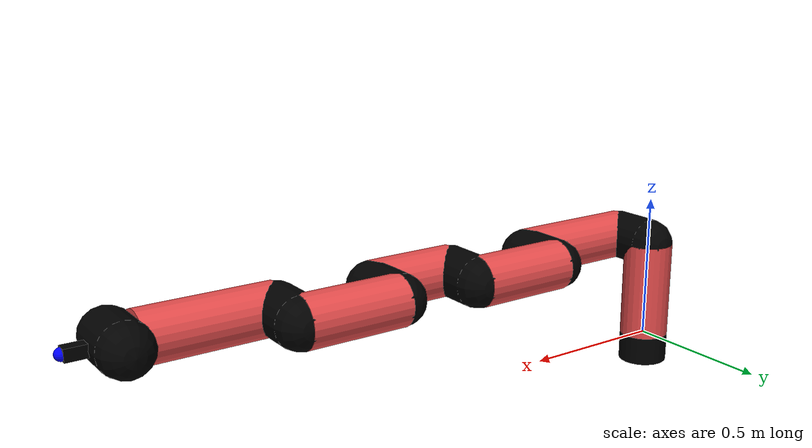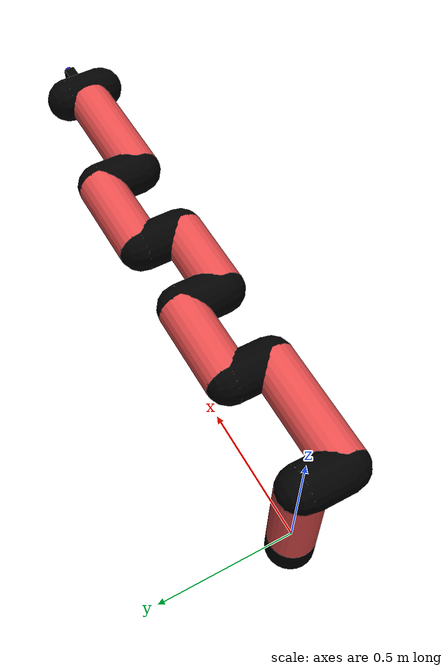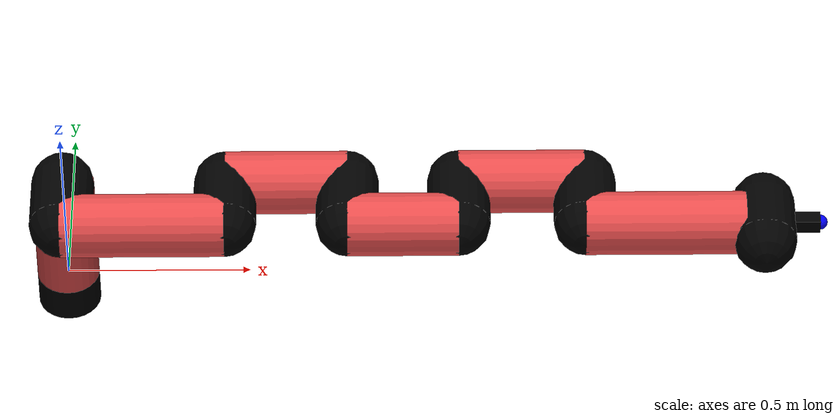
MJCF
<mujoco model="manipulator">
		<compiler angle="degree" coordinate="local" inertiafromgeom="auto" meshdir="meshes/"/>
		<option gravity="0 0 0" integrator="RK4" iterations="30" timestep="0.01"/>

		<default>
		<joint armature="1" limited="true" stiffness="10" damping="15" frictionloss="5.0"/>
		<geom conaffinity="1" condim="3" contype="1" friction=".5 .1 .1" margin="0.002"/>
		<motor ctrllimited="true"/>
		<position ctrllimited="true"/>
		</default>

		<asset>
		<texture builtin="gradient" height="100" rgb1="1.0 1.0 1.0" rgb2="1.0 1.0 1.0" type="skybox" width="100"/>
		<texture builtin="flat" height="32" name="arm_tex" rgb1="0.9 0.3 0.3" type="2d" width="32"/>
		<texture builtin="flat" height="32" name="gripper_tex" rgb1="0.0 0.0 0.0" type="cube" width="32"/>

		<material name="arm_mat" shininess="0.1" specular="0.1" texture="arm_tex"/>
		<material name="gripper_mat" shininess="1" specular="1" texture="gripper_tex"/>
		</asset>

		<worldbody>
		<light cutoff="45" diffuse=".8 .8 .8" dir="0 0.16 -1" directional="false" name="light" pos="0 -2.0 8.0" specular="0.3 0.3 0.3"/>

		<body name="base_link" pos="0 0 -0.1">
		<geom fromto="0 0 0 0 0 0.1" material="arm_mat" name="base_link" rgba="0.0 0.0 0.0 1" size="0.085" type="cylinder"/>
		</body>

		<body name="l1" pos="0 0 0">
<geom fromto="0 0 0 0 0 0.34" material="arm_mat" name="l1" rgba="0.9 0.3 0.3 1" size="0.085" type="cylinder"/>
<geom fromto="0 0 0.34 0 -0.16 0.34" material="arm_mat" name="l1_ex" rgba="0.0 0.0 0.0 1" size="0.085" type="capsule"/>
<joint axis="0 0 1" name="j1" pos="0 0 0" range="-90 90" damping="30.93" frictionloss="8.59"/>

<body name="l2" pos="0 -0.16 0.34">
<geom fromto="0 0 0 0.44 0 0" material="arm_mat" name="l2" rgba="0.9 0.3 0.3 1" size="0.085" type="cylinder"/>
<geom fromto="0.44 0 0 0.44 0.16 0" material="arm_mat" name="l2_ex" rgba="0.0 0.0 0.0 1" size="0.085" type="capsule"/>
<joint axis="0.0 1.0 0.0" name="j2" pos="0 0 0" range="-90 60" damping="27.78" frictionloss="9.05"/>

<body name="l3" pos="0.44 0.16 0">
<geom fromto="0 0 0 0.33 0 0" material="arm_mat" name="l3" rgba="0.9 0.3 0.3 1" size="0.085" type="cylinder"/>
<geom fromto="0.33 0 0 0.33 -0.16 0" material="arm_mat" name="l3_ex" rgba="0.0 0.0 0.0 1" size="0.085" type="capsule"/>
<joint axis="0.0 1.0 0.0" name="j3" pos="0 0 0" range="-30 60" damping="37.01" frictionloss="13.98"/>

<body name="l4" pos="0.33 -0.16 0">
<geom fromto="0 0 0 0.3 0 0" material="arm_mat" name="l4" rgba="0.9 0.3 0.3 1" size="0.085" type="cylinder"/>
<geom fromto="0.3 0 0 0.3 0.16 0" material="arm_mat" name="l4_ex" rgba="0.0 0.0 0.0 1" size="0.085" type="capsule"/>
<joint axis="0.0 1.0 0.0" name="j4" pos="0 0 0" range="-30 60" damping="37.37" frictionloss="11.4"/>

<body name="l5" pos="0.3 0.16 0">
<geom fromto="0 0 0 0.34 0 0" material="arm_mat" name="l5" rgba="0.9 0.3 0.3 1" size="0.085" type="cylinder"/>
<geom fromto="0.34 0 0 0.34 -0.16 0" material="arm_mat" name="l5_ex" rgba="0.0 0.0 0.0 1" size="0.085" type="capsule"/>
<joint axis="0.0 1.0 0.0" name="j5" pos="0 0 0" range="-30 60" damping="27.21" frictionloss="11.29"/>

<body name="l6" pos="0.34 -0.16 0">
<geom fromto="0 0 0 0.43 0 0" material="arm_mat" name="l6" rgba="0.9 0.3 0.3 1" size="0.085" type="cylinder"/>
<joint axis="0.0 1.0 0.0" name="j6" pos="0 0 0" range="-30 60" damping="38.47" frictionloss="13.46"/>

<body name="gripper" pos="0.43 0 0">
<geom fromto="0.05 -0.07 0 0.05 0.07 0" material="gripper_mat" name="gripper" rgba="0.0 0.0 0.0 1" size="0.085" type="capsule"/><joint axis="1 0 0" name="j7" pos="0 0 0" range="-90 90" damping="15" frictionloss="5.0"/><body name="finger" pos="0.1 0 0">
<geom fromto="0 0.0 0 0.1 0.0 0" material="gripper_mat" name="finger" rgba="0.0 0.0 0.0 1" size="0.020 0.06 0.06" type="box"/>
</body>
<site name="current" pos="0.2 0. 0.0" rgba="0. 0. 1.0 1" size="0.02" type="sphere"/>
</body>
</body>
</body>
</body>
</body>
</body>
</body>
</worldbody>
<actuator>
<motor ctrllimited="true" ctrlrange="-1.0 1.0" joint="j1" gear="40.28"/>
<motor ctrllimited="true" ctrlrange="-1.0 1.0" joint="j2" gear="108.9"/>
<motor ctrllimited="true" ctrlrange="-1.0 1.0" joint="j3" gear="99.9"/>
<motor ctrllimited="true" ctrlrange="-1.0 1.0" joint="j4" gear="91.9"/>
<motor ctrllimited="true" ctrlrange="-1.0 1.0" joint="j5" gear="90.7"/>
<motor ctrllimited="true" ctrlrange="-1.0 1.0" joint="j6" gear="101.4"/>
<motor ctrllimited="true" ctrlrange="-1.0 1.0" joint="j7" gear="80"/>
</actuator>
</mujoco>
